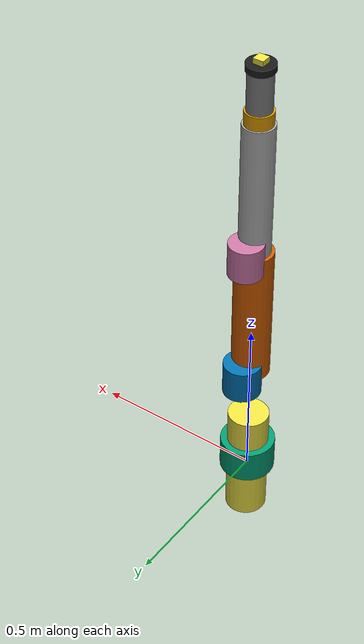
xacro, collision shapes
<?xml version="1.0"?>
<robot xmlns:xacro="http://www.ros.org/wiki/xacro" name="iiwa2">

  <xacro:macro name="iiwa2_macro" params="parent prefix *origin">

    <material name="${prefix}gray2">
      <color rgba="0.5 0.5 0.5 1.0"/>
    </material>

    <link name="${prefix}iiwa_base"/>

    <joint name="${prefix}iiwa_root_joint" type="fixed">
      <xacro:insert_block name="origin" />
      <parent link="${parent}"/>
      <child link="${prefix}iiwa_base"/>
    </joint>

    <joint name="${prefix}iiwa_base_joint" type="fixed">
      <origin rpy="0.0 0 0" xyz="0 0 0"/>
      <parent link="${prefix}iiwa_base"/>
      <child link="${prefix}link_0"/>
    </joint>

    <link name="${prefix}link_0">
      <visual>
        <geometry><mesh filename="file://$(find iiwa_description)/meshes/lbr_iiwa_14_r820/visual/base_link.dae"/></geometry>
      </visual>
      <collision>
        <origin rpy="0 0 0" xyz="0 0 0.05"/>
        <geometry><cylinder radius="0.08" length="0.1"/></geometry>
      </collision>
      <inertial>
        <origin xyz="0 0 0.05" rpy="0 0 0"/>
        <mass value="5"/>
        <inertia ixx="0.05" ixy="0" ixz="0" iyy="0.06" iyz="0" izz="0.03"/>
      </inertial>
    </link>

    <link name="${prefix}link_1">
      <visual>
        <geometry><mesh filename="file://$(find iiwa_description)/meshes/lbr_iiwa_14_r820/visual/link_1.dae"/></geometry>
      </visual>
      <collision>
        <origin xyz="0 0 0.01" rpy="0 0 0"/>
        <geometry><cylinder radius="0.06" length="0.36"/></geometry>
      </collision>-
      <inertial>
        <origin xyz="0 0 0.01" rpy="0 0 0"/>
        <mass value="4"/>
        <inertia ixx="0.05" ixy="0" ixz="0" iyy="0.05" iyz="0" izz="0.005"/>
      </inertial>
    </link>

    <link name="${prefix}link_2">
      <visual>
        <geometry><mesh filename="file://$(find iiwa_description)/meshes/lbr_iiwa_14_r820/visual/link_2.dae"/></geometry>
      </visual>
      <collision>
        <origin xyz="0 0.04 0" rpy="0 0 0"/>
        <geometry><cylinder radius="0.055" length="0.1"/></geometry>
      </collision>
      <inertial>
        <origin xyz="0 0.04 0" rpy="0 0 0"/>
        <mass value="4"/>
        <inertia ixx="0.04" ixy="0" ixz="0" iyy="0.005" iyz="0" izz="0.04"/>
      </inertial>
    </link>

    <link name="${prefix}link_3">
      <visual>
        <geometry><mesh filename="file://$(find iiwa_description)/meshes/lbr_iiwa_14_r820/visual/link_3.dae"/></geometry>
      </visual>
      <collision>
        <origin xyz="0 0 0.21" rpy="0 0 0"/>
        <geometry><cylinder radius="0.055" length="0.42"/></geometry>
      </collision>
      <inertial>
        <origin xyz="0 0 0.21" rpy="0 0 0"/>
        <mass value="3"/>
        <inertia ixx="0.06" ixy="0" ixz="0" iyy="0.06" iyz="0" izz="0.004"/>
      </inertial>
    </link>

    <link name="${prefix}link_4">
      <visual>
        <geometry><mesh filename="file://$(find iiwa_description)/meshes/lbr_iiwa_14_r820/visual/link_4.dae"/></geometry>
      </visual>
      <collision>
        <origin xyz="0 0.04 0" rpy="0 0 0"/>
        <geometry><cylinder radius="0.05" length="0.1"/></geometry>
      </collision>
      <inertial>
        <origin xyz="0 0.04 0" rpy="0 0 0"/>
        <mass value="2.7"/>
        <inertia ixx="0.025" ixy="0" ixz="0" iyy="0.003" iyz="0" izz="0.025"/>
      </inertial>
    </link>

    <link name="${prefix}link_5">
      <visual>
        <geometry><mesh filename="file://$(find iiwa_description)/meshes/lbr_iiwa_14_r820/visual/link_5.dae"/></geometry>
      </visual>
      <collision>
        <origin xyz="0 0 0.2" rpy="0 0 0"/>
        <geometry><cylinder radius="0.045" length="0.4"/></geometry>
      </collision>
      <inertial>
        <origin xyz="0 0 0.2" rpy="0 0 0"/>
        <mass value="1.7"/>
        <inertia ixx="0.03" ixy="0" ixz="0" iyy="0.03" iyz="0" izz="0.002"/>
      </inertial>
    </link>

    <link name="${prefix}link_6">
      <visual>
        <geometry><mesh filename="file://$(find iiwa_description)/meshes/lbr_iiwa_14_r820/visual/link_6.dae"/></geometry>
      </visual>
      <collision>
        <origin xyz="0 0 0" rpy="0 0 0"/>
        <geometry><cylinder radius="0.04" length="0.08"/></geometry>
      </collision>
      <inertial>
        <origin xyz="0 0 0.04" rpy="0 0 0"/>
        <mass value="1.8"/>
        <inertia ixx="0.015" ixy="0" ixz="0" iyy="0.015" iyz="0" izz="0.002"/>
      </inertial>
    </link>

    <link name="${prefix}link_7">
      <visual>
        <origin rpy="0 0 0" xyz="0 0 0.07"/>
        <geometry><mesh filename="file://$(find iiwa_description)/meshes/lbr_iiwa_14_r820/visual/link_7_2.stl" scale="0.001 0.001 0.001"/></geometry>
        <material name="${prefix}gray2"/>
      </visual>
      <collision>
        <origin rpy="0 0 0" xyz="0 0 0.077"/>
        <geometry><cylinder radius="0.035" length="0.154"/></geometry>
      </collision>
      <inertial>
        <origin xyz="0 0 0.077" rpy="0 0 0"/>
        <mass value="0.43"/>
        <inertia ixx="0.002" ixy="0" ixz="0" iyy="0.002" iyz="0" izz="0.0005"/>
      </inertial>
    </link>

    <link name="${prefix}tool0"/>

    <link name="${prefix}camera_link">
      <visual>
        <geometry><box size="0.03 0.03 0.03"/></geometry>
      </visual>
      <collision>
        <geometry><box size="0.03 0.03 0.03"/></geometry>
      </collision>
      <inertial>
        <origin xyz="0 0 0" rpy="0 0 0"/>
        <mass value="0.1"/>
        <inertia ixx="0.0001" ixy="0" ixz="0" iyy="0.0001" iyz="0" izz="0.0001"/>
      </inertial>
    </link>

    <joint name="${prefix}joint_a1" type="revolute">
      <origin rpy="0 0 0" xyz="0 0 0.01"/><parent link="${prefix}link_0"/><child link="${prefix}link_1"/>
      <axis xyz="0 0 1"/><limit effort="320" lower="-2.9668" upper="2.9668" velocity="1.4834"/>
      <dynamics damping="5.0" friction="1.0"/>
    </joint>

    <joint name="${prefix}joint_a2" type="revolute">
      <origin rpy="0 0 0" xyz="0 0 0.36"/><parent link="${prefix}link_1"/><child link="${prefix}link_2"/>
      <axis xyz="0 1 0"/><limit effort="320" lower="-2.0942" upper="2.0942" velocity="1.4834"/>
      <dynamics damping="5.0" friction="1.0"/>
    </joint>

    <joint name="${prefix}joint_a3" type="revolute">
      <origin rpy="0 0 0" xyz="0 0 0"/><parent link="${prefix}link_2"/><child link="${prefix}link_3"/>
      <axis xyz="0 0 1"/><limit effort="176" lower="-2.9668" upper="2.9668" velocity="1.7452"/>
      <dynamics damping="5.0" friction="1.0"/>
    </joint>

    <joint name="${prefix}joint_a4" type="revolute">
      <origin rpy="0 0 0" xyz="0 0 0.42"/><parent link="${prefix}link_3"/><child link="${prefix}link_4"/>
      <axis xyz="0 -1 0"/><limit effort="176" lower="-2.0942" upper="2.0942" velocity="1.3089"/>
      <dynamics damping="5.0" friction="1.0"/>
    </joint>

    <joint name="${prefix}joint_a5" type="revolute">
      <origin rpy="0 0 0" xyz="0 0 0"/><parent link="${prefix}link_4"/><child link="${prefix}link_5"/>
      <axis xyz="0 0 1"/><limit effort="110" lower="-2.9668" upper="2.9668" velocity="2.2688"/>
      <dynamics damping="3.0" friction="0.5"/>
    </joint>

    <joint name="${prefix}joint_a6" type="revolute">
      <origin rpy="0 0 0" xyz="0 0 0.4"/><parent link="${prefix}link_5"/><child link="${prefix}link_6"/>
      <axis xyz="0 1 0"/><limit effort="40" lower="-2.0942" upper="2.0942" velocity="2.356"/>
      <dynamics damping="3.0" friction="0.5"/>
    </joint>

    <joint name="${prefix}joint_a7" type="revolute">
      <origin rpy="0 0 0" xyz="0 0 0"/><parent link="${prefix}link_6"/><child link="${prefix}link_7"/>
      <axis xyz="0 0 1"/><limit effort="40" lower="-3.0541" upper="3.0541" velocity="2.356"/>
      <dynamics damping="2.0" friction="0.3"/>
    </joint>

    <joint name="${prefix}joint_a7-tool0" type="fixed">
      <origin rpy="0 0 0" xyz="0 0 0.154"/><parent link="${prefix}link_7"/><child link="${prefix}tool0"/>
    </joint>

    <joint name="${prefix}camera_joint" type="fixed">
      <parent link="${prefix}tool0"/><child link="${prefix}camera_link"/><origin xyz="0 0 0.02" rpy="0 -1.57 -1.57"/>
    </joint>

    <gazebo reference="${prefix}camera_link">
      <sensor name="${prefix}camera" type="camera">
        <always_on>true</always_on><update_rate>30</update_rate><visualize>true</visualize><topic>${prefix}camera</topic>
        <camera>
          <horizontal_fov>1.047</horizontal_fov>
          <image><width>640</width><height>480</height><format>R8G8B8</format></image>
          <clip><near>0.02</near><far>10.0</far></clip>
        </camera>
      </sensor>
    </gazebo>

     <link name="${prefix}vacuum_gripper_link">
      <visual>
        <origin xyz="0 0 0.01" rpy="0 0 0"/>
        <geometry><cylinder radius="0.04" length="0.02"/></geometry>
        <material name="Black"><color rgba="0.1 0.1 0.1 1"/></material>
      </visual>
      <collision name="${prefix}vacuum_gripper_collision">
        <origin xyz="0 0 0.01" rpy="0 0 0"/>
        <geometry><cylinder radius="0.04" length="0.02"/></geometry>
      </collision>
      <inertial>
        <mass value="0.1"/>
        <inertia ixx="0.0001" ixy="0" ixz="0" iyy="0.0001" iyz="0" izz="0.0001"/>
      </inertial>
    </link>

    <joint name="${prefix}vacuum_gripper_joint" type="fixed">
      <parent link="${prefix}tool0"/>
      <child link="${prefix}vacuum_gripper_link"/>
      <origin xyz="0 0 0" rpy="0 0 0"/>
    </joint>

    <gazebo reference="${prefix}vacuum_gripper_link">
      <sensor name="suction_contact" type="contact">
        <contact>
          <collision>${prefix}vacuum_gripper_collision</collision>
        </contact>
        <update_rate>30</update_rate>
        <always_on>true</always_on>
      </sensor>
    </gazebo>

    <gazebo reference="${prefix}vacuum_gripper_joint">
      <preserveFixedJoint>true</preserveFixedJoint>
      <disableFixedJointLumping>true</disableFixedJointLumping>
    </gazebo>
  </xacro:macro>

  <link name="world"/>
  <xacro:iiwa2_macro parent="world" prefix="iiwa2_">
    <origin xyz="0 0 0" rpy="0 0 0"/>
  </xacro:iiwa2_macro>

  <ros2_control name="iiwa2_hardware" type="system">
    <hardware>
    <plugin>gz_ros2_control/GazeboSimSystem</plugin>
    <param name="use_sim_time">true</param>
  </hardware>
    <joint name="iiwa2_joint_a1"><command_interface name="position"/><command_interface name="velocity"/><state_interface name="position"/><state_interface name="velocity"/></joint>
    <joint name="iiwa2_joint_a2"><command_interface name="position"/><command_interface name="velocity"/><state_interface name="position"/><state_interface name="velocity"/></joint>
    <joint name="iiwa2_joint_a3"><command_interface name="position"/><command_interface name="velocity"/><state_interface name="position"/><state_interface name="velocity"/></joint>
    <joint name="iiwa2_joint_a4"><command_interface name="position"/><command_interface name="velocity"/><state_interface name="position"/><state_interface name="velocity"/></joint>
    <joint name="iiwa2_joint_a5"><command_interface name="position"/><command_interface name="velocity"/><state_interface name="position"/><state_interface name="velocity"/></joint>
    <joint name="iiwa2_joint_a6"><command_interface name="position"/><command_interface name="velocity"/><state_interface name="position"/><state_interface name="velocity"/></joint>
    <joint name="iiwa2_joint_a7"><command_interface name="position"/><command_interface name="velocity"/><state_interface name="position"/><state_interface name="velocity"/></joint>
  </ros2_control>
  <gazebo>
    <plugin filename="libignition-gazebo-detachable-joint-system.so"
            name="ignition::gazebo::systems::DetachableJoint">
      <parent_link>iiwa2_vacuum_gripper_link</parent_link>
      <child_model>package</child_model>
      <child_link>package_link</child_link>
      <output_topic>/iiwa2/gripper/state_package</output_topic>
      <detach_topic>/iiwa2/gripper/detach_package</detach_topic>
      <attach_topic>/iiwa2/gripper/attach_package</attach_topic>
    </plugin>
  </gazebo>
  <gazebo>
    <plugin filename="libignition-gazebo-detachable-joint-system.so"
            name="ignition::gazebo::systems::DetachableJoint">
      <parent_link>iiwa2_vacuum_gripper_link</parent_link>
      <child_model>package2</child_model>
      <child_link>package2_link</child_link>
      <output_topic>/iiwa2/gripper/state_package2</output_topic>
      <detach_topic>/iiwa2/gripper/detach_package2</detach_topic>
      <attach_topic>/iiwa2/gripper/attach_package2</attach_topic>
    </plugin>
  </gazebo>
  <gazebo>
    <plugin filename="libgz_ros2_control-system.so" name="gz_ros2_control::GazeboSimROS2ControlPlugin">
      <parameters>$(find iiwa_description)/config/iiwa2_controllers.yaml</parameters>
      <robot_param>robot_description</robot_param>
      <robot_param_node>robot_state_publisher</robot_param_node>
      <ros>
        <namespace>iiwa2</namespace>
        <remapping>controller_manager/robot_description:=robot_description</remapping>
      </ros>
    </plugin>
  </gazebo>
</robot>
